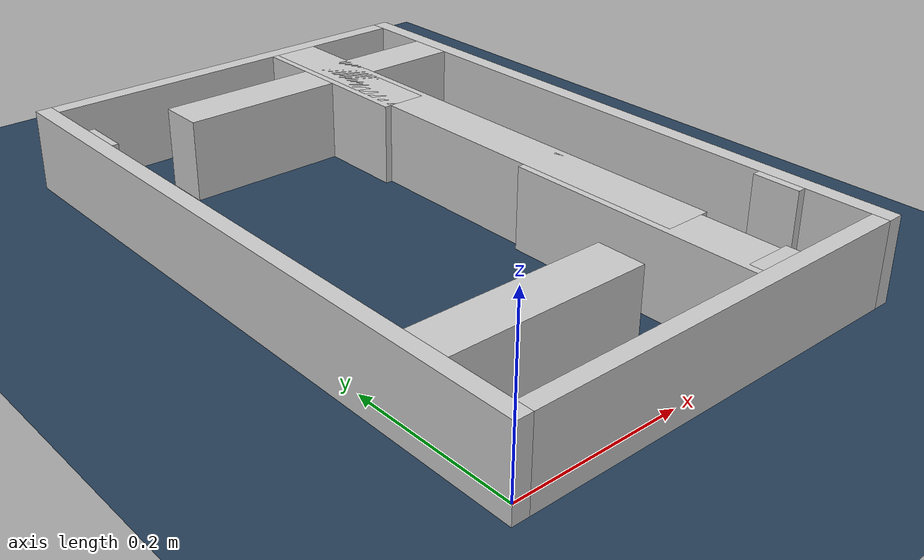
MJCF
<?xml version="1.0" ?>
<mujoco model="generated_real_template">
  <compiler angle="degree"/>
  <option timestep="0.002" integrator="implicitfast" iterations="100" cone="elliptic"/>
  <default>
    <geom density="1"/>
  </default>
  <asset>
    <texture builtin="gradient" height="3072" rgb1="0.3 0.5 0.7" rgb2="0 0 0" type="skybox" width="512"/>
    <texture builtin="checker" height="300" mark="edge" markrgb="0.8 0.8 0.8" name="groundplane" rgb1="0.2 0.3 0.4" rgb2="0.1 0.2 0.3" type="2d" width="300"/>
    <material name="groundplane" reflectance="0.2" texrepeat="5 5" texture="groundplane" texuniform="true"/>
  </asset>
  <worldbody>
    <light dir="0 0 -1" directional="true" pos="0 0 1.5"/>
    <geom name="floor" type="plane" condim="4" friction="0.5 0.005 0.001" material="groundplane" size="0 0 0.05"/>
    <body name="walls">
      <geom name="wall_boundary_left" type="box" condim="4" friction="1.0 0.005 0.0001" rgba="0.8 0.8 0.8 1" pos="-0.010000 0.387500 0.050000" euler="0 0 0.000000" size="0.010000 0.407500 0.050000"/>
      <geom name="wall_boundary_right" type="box" condim="4" friction="1.0 0.005 0.0001" rgba="0.8 0.8 0.8 1" pos="0.500000 0.387500 0.050000" euler="0 0 0.000000" size="0.010000 0.407500 0.050000"/>
      <geom name="wall_boundary_bottom" type="box" condim="4" friction="1.0 0.005 0.0001" rgba="0.8 0.8 0.8 1" pos="0.245000 -0.010000 0.050000" euler="0 0 0.000000" size="0.245000 0.010000 0.050000"/>
      <geom name="wall_boundary_top" type="box" condim="4" friction="1.0 0.005 0.0001" rgba="0.8 0.8 0.8 1" pos="0.245000 0.785000 0.050000" euler="0 0 0.000000" size="0.245000 0.010000 0.050000"/>
      <geom name="wall_inner_1_1" type="box" condim="4" friction="1.0 0.005 0.0001" rgba="0.8 0.8 0.8 1" pos="0.003912 0.672190 0.050000" euler="0 0 0.000000" size="0.003912 0.028500 0.050000"/>
      <geom name="wall_inner_1_2" type="box" condim="4" friction="1.0 0.005 0.0001" rgba="0.8 0.8 0.8 1" pos="0.296616 0.672190 0.050000" euler="0 0 0.000000" size="0.193384 0.028500 0.050000"/>
      <geom name="wall_inner_2_1" type="box" condim="4" friction="1.0 0.005 0.0001" rgba="0.8 0.8 0.8 1" pos="0.340640 0.007817 0.050000" euler="0 0 90.000000" size="0.007817 0.028500 0.050000"/>
      <geom name="wall_inner_2_2" type="box" condim="4" friction="1.0 0.005 0.0001" rgba="0.8 0.8 0.8 1" pos="0.340640 0.442019 0.050000" euler="0 0 90.000000" size="0.332981 0.028500 0.050000"/>
      <geom name="wall_inner_3_1" type="box" condim="4" friction="1.0 0.005 0.0001" rgba="0.8 0.8 0.8 1" pos="0.332256 0.155071 0.050000" euler="0 0 90.000000" size="0.155071 0.028500 0.050000"/>
      <geom name="wall_inner_3_2" type="box" condim="4" friction="1.0 0.005 0.0001" rgba="0.8 0.8 0.8 1" pos="0.332256 0.656193 0.050000" euler="0 0 90.000000" size="0.118807 0.028500 0.050000"/>
      <geom name="wall_inner_4_1" type="box" condim="4" friction="1.0 0.005 0.0001" rgba="0.8 0.8 0.8 1" pos="0.119829 0.106417 0.050000" euler="0 0 0.000000" size="0.119829 0.028500 0.050000"/>
      <geom name="wall_inner_4_2" type="box" condim="4" friction="1.0 0.005 0.0001" rgba="0.8 0.8 0.8 1" pos="0.484852 0.106417 0.050000" euler="0 0 0.000000" size="0.005148 0.028500 0.050000"/>
    </body>
  </worldbody>
</mujoco>
